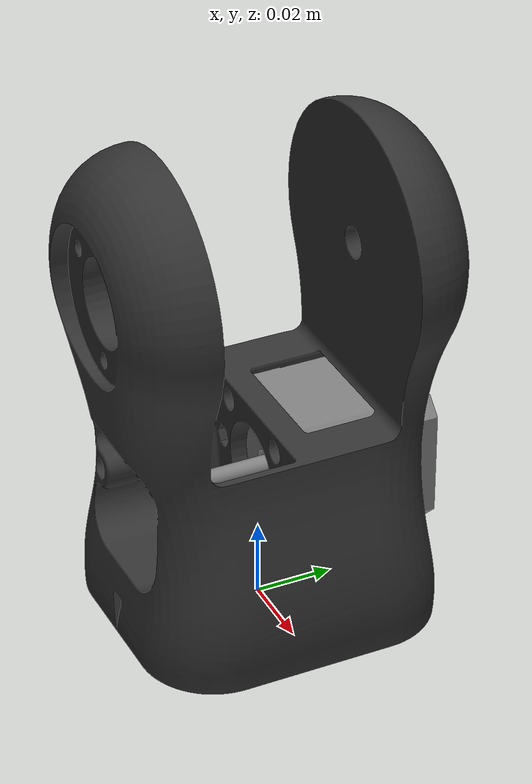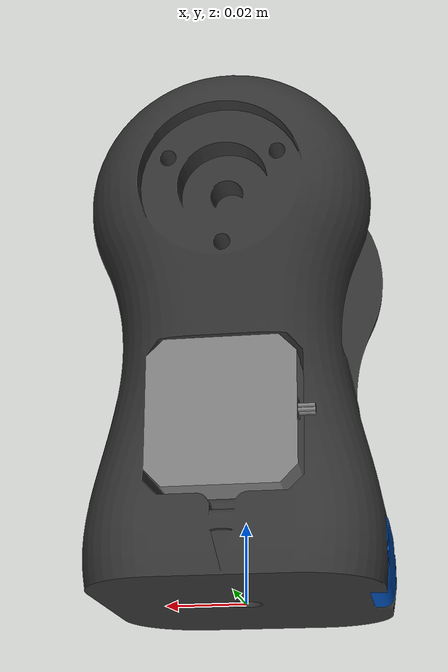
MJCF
<mujoco>
    <compiler meshdir="../meshes/Wrist" />

    <include file="materials.xml" />

    <default>

        <default class="visual">
            <geom pos="0.02743 -0.105 -0.01342" euler="90 180 0" />
        </default>
    </default>

    <asset>
        <mesh name="Wrist_body_visual" file="Wrist_arm.STL" />
        <mesh name="Wrist_motor_visual" file="Wrist_motor.STL" />
        <mesh name="Wrist_attachments_visual" file="Wrist_attachments.STL" />
    </asset>

    <worldbody>
        <body name="Wrist">
            <geom type="mesh" mesh="Wrist_body_visual" class="visual" material="black" mass="0.1" />
            <geom type="mesh" mesh="Wrist_motor_visual" class="visual" material="silver" mass="0.5" />
            <geom type="mesh" mesh="Wrist_attachments_visual" class="visual" material="blue" mass="0.01" />
        </body>
    </worldbody>
</mujoco>

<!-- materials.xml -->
<mujoco>

    <default>
        <mesh scale="0.001 0.001 0.001" />
        <geom contype="0" conaffinity="0" mass="0" />
    </default>

    <asset>
        <texture type="skybox" builtin="gradient" rgb1=".3 .5 .7" rgb2="1 1 1" width="32" height="512"/>
        <material name="blue" rgba="0.0 0.3 0.7 1" />
        <material name="black" rgba="0.2 0.2 0.2 1" />
        <material name="deep_black" rgba="0.1 0.1 0.1 1" />
        <material name="silver" rgba="0.5 0.5 0.5 1" />
        <material name="brown" rgba="1 0.7 0.5 1" />
    </asset>
</mujoco>
